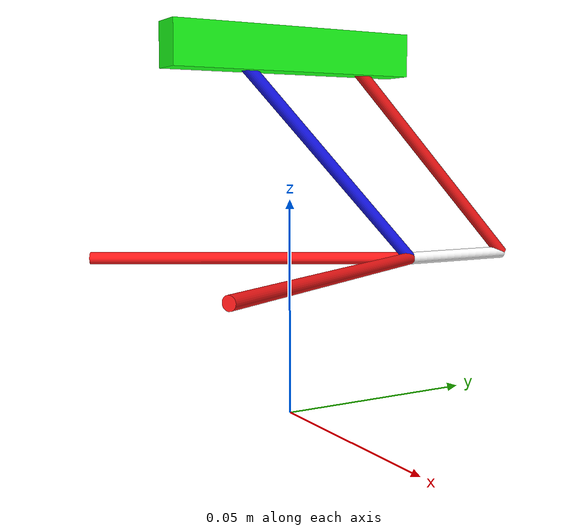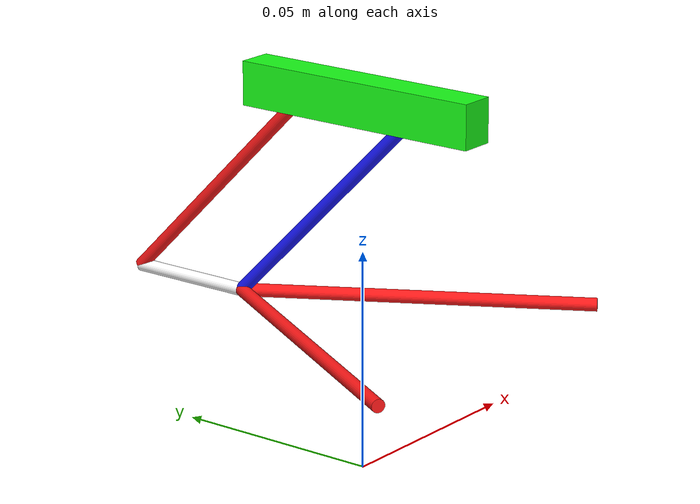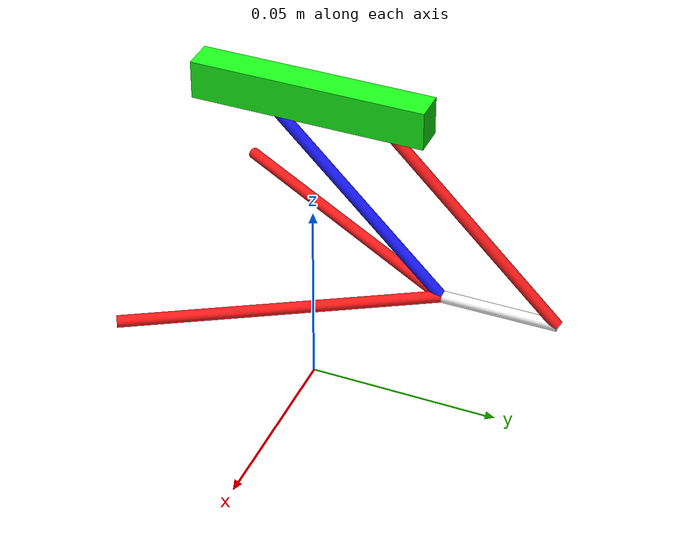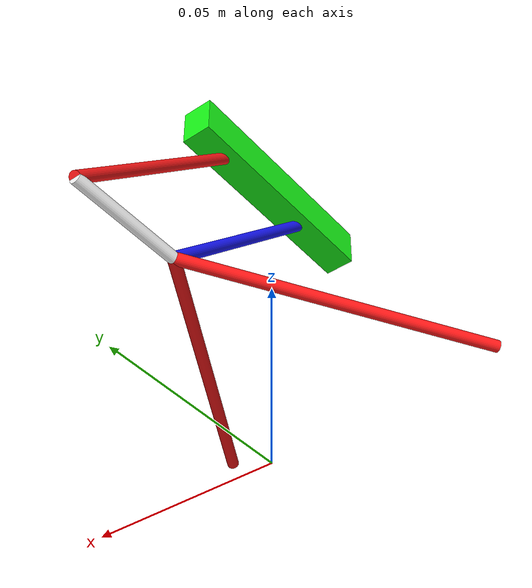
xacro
<?xml version="1.0"?>
<robot xmlns:xacro="http://www.ros.org/wiki/xacro" name="test">

    <xacro:property name="l1" value="${30/1000}"/>
    <xacro:property name="l2" value="${70/1000}"/>
    <xacro:property name="l3" value="${l2}"/>
    <xacro:property name="l4" value="${l1}"/>
    <xacro:property name="l5" value="${80/1000}"/>

    <xacro:property name="t" value="${1.5/1000}"/>
    <xacro:property name="w" value="${8/1000}"/>
    <xacro:property name="h" value="${10/1000}"/>
    <xacro:property name="angle" value="pi/6" />

    <xacro:property name="d" value="${1.2*1000}"/>

    <material name="white">
        <color rgba="1 1 1 1"/>
    </material>

    <material name="red">
        <color rgba="1 0.1 0.1 1"/>
    </material>

     <material name="green">
        <color rgba="0.1 1 0.1 1"/>
    </material>

    <material name="blue">
        <color rgba="0.1 0.1 1 1"/>
    </material>

    <material name="black">
        <color rgba="0.1 0.1 0.1 1"/>
    </material>

    <link name="base_link">
        <inertial>
            <origin xyz="0.0 0.0 ${1.2*l2}" rpy="${pi/2} 0.0 0.0"/>
            <mass value="${pi*t*t*l1*d*10}"/>
            <inertia ixx="${1/12*pi*t*t*l1*d*(3*t*t+l1*l1)}" ixy="0.0" ixz="0.0" iyy="${1/12*t*t*l1*d*(3*t*t+l1*l1)}" iyz="0.0" izz="${1/2*t*t*l1*d*t*t}"/>
        </inertial>
        <visual>
            <origin xyz="0.0 0.0 ${1.2*l2}" rpy="${pi/2} 0.0 0.0"/>
            <geometry>
                <box size="${w} ${h} ${2*l1}"/>
            </geometry>
            <material name="green"/>
        </visual>
        <collision>
            <origin xyz="0.0 0.0 ${1.2*l2}" rpy="${pi/2} 0.0 0.0"/>
            <geometry>
                <cylinder radius="${t}" length="${l1}"/>
            </geometry>
        </collision>
    </link>

    <link name="link2">
        <inertial>
            <origin xyz="0.0 ${l2/2*sin(pi/4)} ${-l2/2*cos(pi/4)}" rpy="${pi/4} 0.0 0.0"/>
            <mass value="${pi*t*t*l2*d}"/>
            <inertia ixx="${1/12*pi*t*t*l2*d*(3*t*t+l2*l2)}" ixy="0.0" ixz="0.0" iyy="${1/12*t*t*l2*d*(3*t*t+l2*l2)}" iyz="0.0" izz="${1/2*t*t*l2*d*t*t}"/>
        </inertial>
        <visual>
            <origin xyz="0.0 ${l2/2*sin(pi/4)} ${-l2/2*cos(pi/4)}" rpy="${pi/4} 0.0 0.0"/>
            <geometry>
                <cylinder radius="${t}" length="${l2}"/>
            </geometry>
            <material name="blue"/>
        </visual>
        <collision>
            <origin xyz="0.0 ${l2/2*sin(pi/4)} ${-l2/2*cos(pi/4)}" rpy="${pi/4} 0.0 0.0"/>
            <geometry>
                <cylinder radius="${t}" length="${l2}"/>
            </geometry>
        </collision>
    </link>

    <link name="link3">
        <inertial>
            <origin xyz="0.0 ${-l3/2*sin(pi/4)} ${l3/2*cos(pi/4)}" rpy="${pi/4} 0.0 0.0"/>
            <mass value="${pi*t*t*l3*d}"/>
            <inertia ixx="${1/12*pi*t*t*l3*d*(3*t*t+l3*l3)}" ixy="0.0" ixz="0.0" iyy="${1/12*t*t*l3*d*(3*t*t+l3*l3)}" iyz="0.0" izz="${1/2*t*t*l3*d*t*t}"/>
        </inertial>
        <visual>
            <origin xyz="0.0 ${-l3/2*sin(pi/4)} ${l3/2*cos(pi/4)}" rpy="${pi/4} 0.0 0.0"/>
            <geometry>
                <cylinder radius="${t}" length="${l3}"/>
            </geometry>
            <material name="red"/>
        </visual>
        <collision>
            <origin xyz="0.0 ${-l3/2*sin(pi/4)} ${l3/2*cos(pi/4)}" rpy="${pi/4} 0.0 0.0"/>
            <geometry>
                <cylinder radius="${t}" length="${l3}"/>
            </geometry>
        </collision>
    </link>

    <link name="link4">
        <inertial>
            <origin xyz="0.0 ${l4/2} 0.0" rpy="${pi/2} 0.0 0.0"/>
            <mass value="${pi*t*t*l4*d}"/>
            <inertia ixx="${1/12*pi*t*t*l4*d*(3*t*t+l4*l4)}" ixy="0.0" ixz="0.0" iyy="${1/12*t*t*l4*d*(3*t*t+l4*l4)}" iyz="0.0" izz="${1/2*t*t*l4*d*t*t}"/>
        </inertial>
        <visual>
            <origin xyz="0.0 ${l4/2} 0.0" rpy="${pi/2} 0.0 0.0"/>
            <geometry>
                <cylinder radius="${t}" length="${l4}"/>
            </geometry>
            <material name="white"/>
        </visual>
        <collision>
            <origin xyz="0.0 ${l4/2} 0.0" rpy="${pi/2} 0.0 0.0"/>
            <geometry>
                <cylinder radius="${t}" length="${l4}"/>
            </geometry>
        </collision>
    </link>

    <link name="link5">
        <inertial>
            <origin xyz="${l5/2*sin(pi/6)} ${-l5/2*cos(pi/6)} 0.0" rpy="${pi/2} 0.0 ${pi/6}"/>
            <mass value="${pi*t*t*l5*d}"/>
            <inertia ixx="${1/12*pi*t*t*l5*d*(3*t*t+l5*l5)}" ixy="0.0" ixz="0.0" iyy="${1/12*t*t*l5*d*(3*t*t+l5*l5)}" iyz="0.0" izz="${1/2*t*t*l5*d*t*t}"/>
        </inertial>
        <visual>
            <origin xyz="${l5/2*sin(pi/6)} ${-l5/2*cos(pi/6)} 0.0" rpy="${pi/2} 0.0 ${pi/6}"/>
            <geometry>
                <cylinder radius="${t}" length="${l5}"/>
            </geometry>
            <material name="red"/>
        </visual>
        <collision>
            <origin xyz="${l5/2*sin(pi/6)} ${-l5/2*cos(pi/6)} 0.0" rpy="${pi/2} 0.0 ${pi/6}"/>
            <geometry>
                <cylinder radius="${t}" length="${l5}"/>
            </geometry>
        </collision>
    </link>

    <link name="link5s">
        <inertial>
            <origin xyz="${-l5/2*sin(pi/6)} ${-l5/2*cos(pi/6)} 0.0" rpy="${pi/2} 0.0 ${-pi/6}"/>
            <mass value="${pi*t*t*l5*d}"/>
            <inertia ixx="${1/12*pi*t*t*l5*d*(3*t*t+l5*l5)}" ixy="0.0" ixz="0.0" iyy="${1/12*t*t*l5*d*(3*t*t+l5*l5)}" iyz="0.0" izz="${1/2*t*t*l5*d*t*t}"/>
        </inertial>
        <visual>
            <origin xyz="${-l5/2*sin(pi/6)} ${-l5/2*cos(pi/6)} 0.0" rpy="${pi/2} 0.0 ${-pi/6}"/>
            <geometry>
                <cylinder radius="${t}" length="${l5}"/>
            </geometry>
            <material name="red"/>
        </visual>
        <collision>
            <origin xyz="${-l5/2*sin(pi/6)} ${-l5/2*cos(pi/6)} 0.0" rpy="${pi/2} 0.0 ${-pi/6}"/>
            <geometry>
                <cylinder radius="${t}" length="${l5}"/>
            </geometry>
        </collision>
    </link>

    <joint name="j12" type="revolute">
        <origin xyz="0.0 ${-l1/2} ${1.2*l2}" rpy="0.0 0.0 0.0"/>
        <parent link="base_link"/>
        <child link="link2"/>
        <axis xyz="1.0 0.0 0.0"/>
        <limit lower="0.0" upper="${pi}" effort="${100}" velocity="${pi}"/>
    </joint>

    <joint name="j25s" type="continuous">
        <origin xyz="0.0 ${l2*sin(pi/4)} ${-l2*cos(pi/4)}" rpy="0.0 0.0 0.0"/>
        <parent link="link2"/>
        <child link="link5s"/>
        <axis xyz="1.0 0.0 0.0"/>
    </joint>

    <joint name="j5s5" type="fixed">
        <origin xyz="0.0 0.0 0.0" rpy="0.0 0.0 0.0"/>
        <parent link="link5s"/>
        <child link="link5"/>
    </joint>

    <joint name="j54" type="fixed">
        <origin xyz="0.0 0.0 0.0" rpy="0.0 0.0 0.0"/>
        <parent link="link5"/>
        <child link="link4"/>
    </joint>

    <joint name="j43" type="continuous">
        <origin xyz="0.0 ${l4} 0.0" rpy="0.0 0.0 0.0"/>
        <parent link="link4"/>
        <child link="link3"/>
        <axis xyz="1.0 0.0 0.0"/>
    </joint>

</robot>
